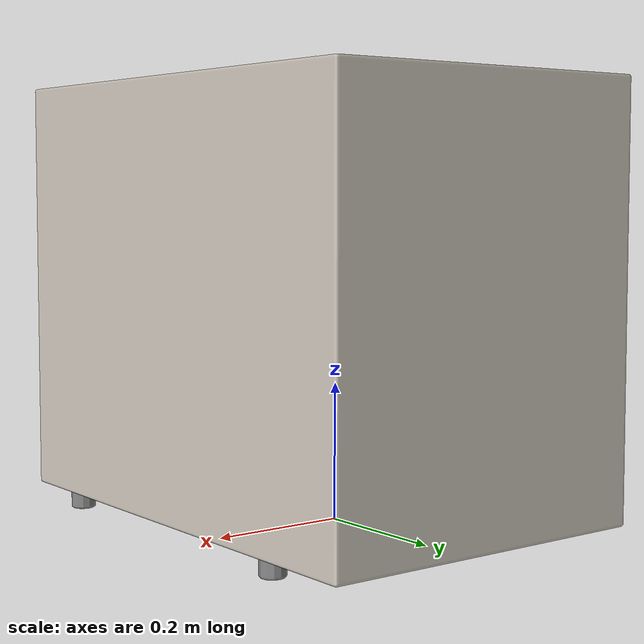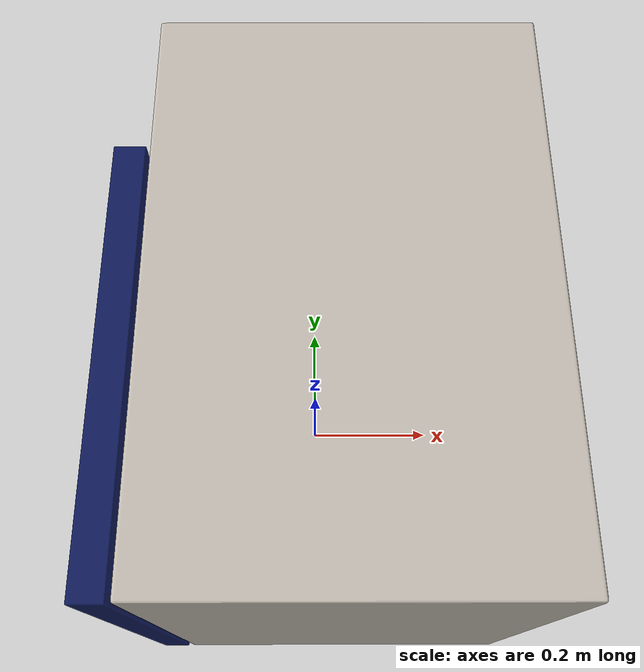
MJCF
<?xml version="1.0" ?>
<mujoco model="drying_box">
  <compiler angle="radian" />
  <asset>
    <texture type="2d" name="body_mdl_0008_tex" file="body_mdl_0008.png"/>
    <texture type="2d" name="body_mdl_0009_tex" file="body_mdl_0009.png"/>
    <material name="body_aluminum_anodized_charcoal_mat" specular="0.4" shininess="0.001" rgba="0.471 0.471 0.471 1.0"/>
    <material name="body_mdl_0007_mat" specular="0.4" shininess="0.001" rgba="0.059 0.102 0.353 1.0"/>
    <material name="body_mdl_0008_mat" texture="body_mdl_0008_tex" specular="0.4" shininess="0.001" rgba="1 1 1 1"/>
    <material name="body_mdl_0009_mat" texture="body_mdl_0009_tex" specular="0.4" shininess="0.001" rgba="1 1 1 1"/>
    <material name="body_vcol_mat" specular="0.4" shininess="0.001" rgba="0.000 0.000 0.000 1.0"/>
    <material name="button_vcol_mat" specular="0.4" shininess="0.001" rgba="0.6 0.05 0.05 1.0"/>
    <material name="door_mdl_0007_mat" specular="0.4" shininess="0.001" rgba="0.059 0.102 0.353 1.0"/>
    <!-- Visual meshes -->
    <mesh file="body_aluminum_anodized_charcoal.obj"/>
    <mesh file="body_mdl_0007.obj"/>
    <mesh file="body_mdl_0008.obj"/>
    <mesh file="body_mdl_0009.obj"/>
    <mesh file="body_vcol.obj"/>
    <mesh file="button_vcol.obj"/>
    <mesh file="door_mdl_0007.obj"/>
    <!-- Body collision meshes -->
    <mesh file="body_collision/body_collision_0.obj"/>
    <mesh file="body_collision/body_collision_1.obj"/>
    <mesh file="body_collision/body_collision_10.obj"/>
    <mesh file="body_collision/body_collision_11.obj"/>
    <mesh file="body_collision/body_collision_2.obj"/>
    <mesh file="body_collision/body_collision_3.obj"/>
    <mesh file="body_collision/body_collision_4.obj"/>
    <mesh file="body_collision/body_collision_5.obj"/>
    <mesh file="body_collision/body_collision_6.obj"/>
    <mesh file="body_collision/body_collision_7.obj"/>
    <mesh file="body_collision/body_collision_8.obj"/>
    <mesh file="body_collision/body_collision_9.obj"/>
    <!-- Door collision meshes -->
    <mesh file="door_collision/door_collision_0.obj"/>
    <mesh file="door_collision/door_collision_1.obj"/>
    <mesh file="door_collision/door_collision_2.obj"/>
    <mesh file="door_collision/door_collision_3.obj"/>
    <mesh file="door_collision/door_collision_4.obj"/>
    <mesh file="door_collision/door_collision_5.obj"/>
  </asset>
  <default>
    <default class="visual">
      <geom group="2" type="mesh" contype="0" conaffinity="0" density="50"/>
    </default>
    <default class="collision">
      <geom group="3" type="mesh" density="50" friction="1.5 0.1 0.1" solimp="0.9 0.95 0.001" solref="0.02 1"/>
    </default>
    <default class="keypoint">
      <site type="sphere" size="0.01" group="3" rgba="1 0 0 1"/>
    </default>
    <default class="placepoint">
      <site type="sphere" size="0.01" group="2" rgba="0 0 1 0"/>
    </default>
    <default class="grasppoint">
      <site type="sphere" size="0.005" group="4" rgba="0 0 1 1"/>
    </default>
  </default>
  <worldbody>
    <body name="drying_box">
      <inertial pos="0 0 0.3150" mass="20.0" diaginertia="0.5 0.5 0.5"/>
      <!-- Body visual meshes -->
      <geom mesh="body_aluminum_anodized_charcoal" material="body_aluminum_anodized_charcoal_mat" class="visual"/>
      <geom mesh="body_mdl_0007" material="body_mdl_0007_mat" class="visual"/>
      <geom mesh="body_mdl_0008" material="body_mdl_0008_mat" class="visual"/>
      <geom mesh="body_mdl_0009" material="body_mdl_0009_mat" class="visual"/>
      <geom mesh="body_vcol" material="body_vcol_mat" class="visual"/>
      <!-- Body collision -->
      <geom mesh="body_collision_0" class="collision"/>
      <geom mesh="body_collision_1" class="collision"/>
      <geom mesh="body_collision_10" class="collision"/>
      <geom mesh="body_collision_11" class="collision"/>
      <geom mesh="body_collision_2" class="collision"/>
      <geom mesh="body_collision_3" class="collision"/>
      <geom mesh="body_collision_4" class="collision"/>
      <geom mesh="body_collision_5" class="collision"/>
      <geom mesh="body_collision_6" class="collision"/>
      <geom mesh="body_collision_7" class="collision"/>
      <geom mesh="body_collision_8" class="collision"/>
      <geom mesh="body_collision_9" class="collision"/>
      <!-- Body keypoints + placepoints -->
      <site class="keypoint" name="ext_p0" pos="-0.21421578060335378 -0.369553866222897 0.0"/>
      <site class="keypoint" name="ext_px" pos="0.28820701490375455 -0.369553866222897 0.0"/>
      <site class="keypoint" name="ext_py" pos="-0.21421578060335378 0.3704462501843404 0.0"/>
      <site class="keypoint" name="ext_pz" pos="-0.21421578060335378 -0.369553866222897 0.6300000032205122"/>
      <site class="keypoint" name="ext_pxyz" pos="0.28820701490375455 0.3704462501843404 0.6300000032205122"/>
      <site class="placepoint" name="place_c" pos="-3.552713678800501e-15 -0.09762488409377923 0.3300000394482424"/>

      <!-- Door (hinged on the back-left edge, opens by rotating around vertical Y axis) -->
      <body name="door">
        <joint name="drying_box_door_joint" type="hinge" axis="0 0 1"
               pos="-0.2882 -0.3704 0.0331"
               range="0.0 1.8"
               damping="20" frictionloss="10" armature="0.5" ref="0" stiffness="0"/>
        <inertial pos="0.0406 0.2728 0.2969" mass="5.0" diaginertia="0.1 0.5 0.5"/>
        <!-- Door visual mesh -->
        <geom mesh="door_mdl_0007" material="door_mdl_0007_mat" class="visual"/>
        <!-- Door collision -->
        <geom mesh="door_collision_0" class="collision"/>
        <geom mesh="door_collision_1" class="collision"/>
        <geom mesh="door_collision_2" class="collision"/>
        <geom mesh="door_collision_3" class="collision"/>
        <geom mesh="door_collision_4" class="collision"/>
        <geom mesh="door_collision_5" class="collision"/>
        <!-- Door keypoints -->
        <site class="keypoint" name="door_p0" pos="-0.28820701490376166 -0.3704462501843404 0.033080921375821803"/>
        <site class="keypoint" name="door_p1" pos="-0.28820701490376166 0.17519648199678195 0.033080921375821803"/>
        <site class="keypoint" name="door_p2" pos="-0.28820701490376166 -0.3704462501843404 0.626919157520663"/>
        <site class="keypoint" name="door_p3" pos="-0.28820701490376166 0.17519648199678195 0.626919157520663"/>
        <!-- Handle grasppoint -->
        <site class="grasppoint" name="door_handle_grasp" pos="-0.2626 0.1274 0.3484"/>
      </body>

      <!-- Button (sliding joint along X, can be pressed inward) -->
      <body name="button">
        <joint name="drying_box_button_joint" type="slide" axis="1 0 0"
               pos="-0.2688 0.3030 0.3738"
               range="0 0.025"
               damping="5" frictionloss="3" armature="0.001" ref="0"/>
        <inertial pos="0 0 0" mass="0.5" diaginertia="0.0033 0.0033 0.0033"/>
        <geom mesh="button_vcol" material="button_vcol_mat" class="visual"/>
        <!-- Button collision (simple box) -->
        <geom type="box" size="0.0200 0.0200 0.0200" name="start_button" class="collision"/>
      </body>
    </body>
  </worldbody>
</mujoco>
